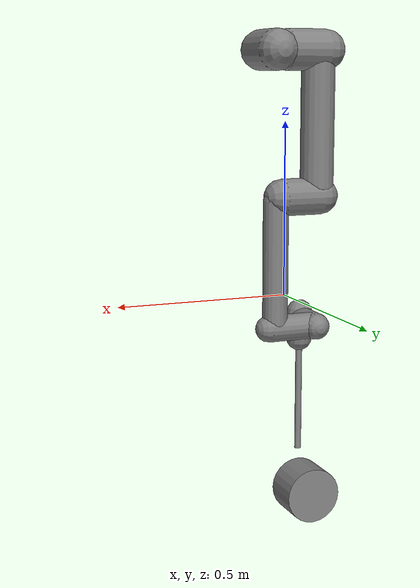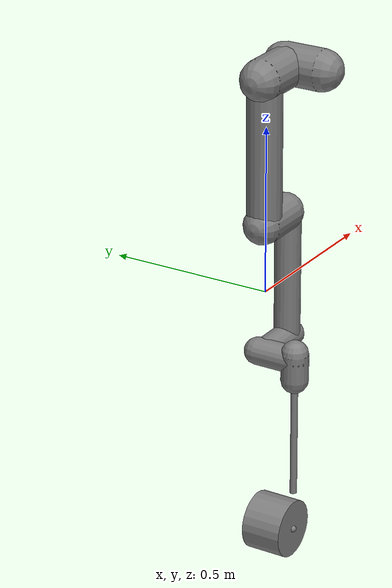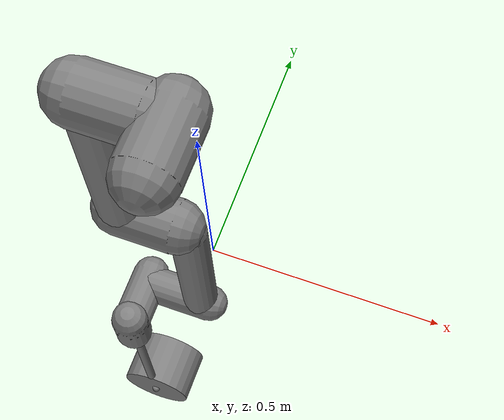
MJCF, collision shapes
<mujoco model="ur5e">
  <compiler angle="radian" meshdir="meshes" autolimits="true"/>
  <option timestep="0.001"/>

  <default>
    <default class="ur5e">
      <material specular="0.5" shininess="0.25"/>
      <default class="visual">
        <geom type="mesh" contype="0" conaffinity="0" group="2"/>
      </default>
      <default class="collision">
        <geom type="capsule" group="3"/>
        <default class="eef_collision">
          <geom type="cylinder"/>
        </default>
      </default>
      <default class="racket_collision">
        <!-- 1000 and 0111 -->
        <geom contype="8" conaffinity="7"  group="3"/>
      </default>
      <default class="Shoulder">
        <motor ctrlrange="-1.485 1.485" user="3030 2000 1.87e-8"/>
      </default>
      <default class="Wrist">
        <motor ctrlrange="-0.277 0.277" user="3030 2000 2.07e-5"/>
      </default>
    </default>
  </default>

  <asset>
    <material class="ur5e" name="black" rgba="0.033 0.033 0.033 1"/>
    <material class="ur5e" name="jointgray" rgba="0.278 0.278 0.278 1"/>
    <material class="ur5e" name="linkgray" rgba="0.82 0.82 0.82 1"/>
    <material class="ur5e" name="urblue" rgba="0.49 0.678 0.8 1"/>

    <mesh file="base_0.obj"/>
    <mesh file="base_1.obj"/>
    <mesh file="shoulder_0.obj"/>
    <mesh file="shoulder_1.obj"/>
    <mesh file="shoulder_2.obj"/>
    <mesh file="upperarm_0.obj"/>
    <mesh file="upperarm_1.obj"/>
    <mesh file="upperarm_2.obj"/>
    <mesh file="upperarm_3.obj"/>
    <mesh file="forearm_0.obj"/>
    <mesh file="forearm_1.obj"/>
    <mesh file="forearm_2.obj"/>
    <mesh file="forearm_3.obj"/>
    <mesh file="wrist1_0.obj"/>
    <mesh file="wrist1_1.obj"/>
    <mesh file="wrist1_2.obj"/>
    <mesh file="wrist2_0.obj"/>
    <mesh file="wrist2_1.obj"/>
    <mesh file="wrist2_2.obj"/>
    <mesh file="wrist3.obj"/>
    <mesh file="racket.STL"/>
  </asset>

  <worldbody>
    <light name="spotlight" mode="track" pos="0 0 3" dir="0 0 -1"  castshadow="false"/>
    <light name="front" mode="track" pos="3 0.2 1.5" dir="-1 0 0" castshadow="false"/>
    <body name="base" pos="0 -0.24 0.7" quat="1 -1 0 0" childclass="ur5e">
      <inertial mass="4.0" pos="0 0 0" diaginertia="0.00443333156 0.00443333156 0.0072"/>
      <geom mesh="base_0" material="black" class="visual"/>
      <geom mesh="base_1" material="jointgray" class="visual"/>
      <body name="shoulder_link" pos="0 0 0.163" quat="1 0 0 1">
        <inertial mass="3.7" pos="0 0 0" diaginertia="0.0102675 0.0102675 0.00666"/>
        <joint name="ShoulderRoll" axis="0 0 1" range="-3.1415 3.1415"  limited="true"/>
        <geom mesh="shoulder_0" material="urblue" class="visual"/>
        <geom mesh="shoulder_1" material="black" class="visual"/>
        <geom mesh="shoulder_2" material="jointgray" class="visual"/>
        <geom class="collision" size="0.06 0.06" pos="0 0 -0.04"/>
        <body name="upper_arm_link" pos="0 0.138 0" quat="1 0 1 0">
          <inertial mass="8.393" pos="0 0 0.2125" diaginertia="0.133886 0.133886 0.0151074"/>
          <joint name="ShoulderPitch" axis="0 -1 0" range="-3.1415 4.8"  limited="true"/>
          <geom mesh="upperarm_0" material="linkgray" class="visual"/>
          <geom mesh="upperarm_1" material="black" class="visual"/>
          <geom mesh="upperarm_2" material="jointgray" class="visual"/>
          <geom mesh="upperarm_3" material="urblue" class="visual"/>
          <geom class="collision" pos="0 -0.04 0" quat="1 1 0 0" size="0.06 0.06"/>
          <geom class="collision" size="0.05 0.2" pos="0 0 0.2"/>
          <body name="forearm_link" pos="0 -0.131 0.425">
            <inertial mass="2.275" pos="0 0 0.196" diaginertia="0.0311796 0.0311796 0.004095"/>
            <joint name="Elbow" axis="0 -1 0" range="-3.1415 3.14"  limited="true"/>
            <geom mesh="forearm_0" material="urblue" class="visual"/>
            <geom mesh="forearm_1" material="linkgray" class="visual"/>
            <geom mesh="forearm_2" material="black" class="visual"/>
            <geom mesh="forearm_3" material="jointgray" class="visual"/>
            <geom class="collision" pos="0 0.08 0" quat="1 1 0 0" size="0.055 0.06"/>
            <geom class="collision" size="0.038 0.19" pos="0 0 0.2"/>
            <body name="wrist_1_link" pos="0 0 0.392" quat="1 0 1 0">
              <inertial mass="1.219" pos="0 0.127 0" diaginertia="0.0025599 0.0025599 0.0021942"/>
              <joint name="wrist_1" axis="0 -1 0" range="-3.1415 3.14"  limited="true"/>
              <geom mesh="wrist1_0" material="black" class="visual"/>
              <geom mesh="wrist1_1" material="urblue" class="visual"/>
              <geom mesh="wrist1_2" material="jointgray" class="visual"/>
              <geom class="collision" pos="0 0.05 0" quat="1 1 0 0" size="0.04 0.07"/>
              <body name="wrist_2_link" pos="0 0.127 0" quat="1 0 0 1">
                <inertial mass="1.219" pos="0 0 0.1" diaginertia="0.0025599 0.0025599 0.0021942"/>
                <joint name="wrist_2" axis="0 0 1" range="-3.1415 3.14"  limited="true"/>
                <geom mesh="wrist2_0" material="black" class="visual"/>
                <geom mesh="wrist2_1" material="urblue" class="visual"/>
                <geom mesh="wrist2_2" material="jointgray" class="visual"/>
                <geom class="collision" size="0.04 0.06" pos="0 0 0.04"/>
                <geom class="collision" pos="0 0.02 0.1" quat="1 1 0 0" size="0.04 0.04"/>
                <body name="wrist_3_link" pos="0 0 0.1" quat="1 1 0 0">

                  <joint name="wrist_3" axis="0 -1 0" range="-3.1415 3.14"  limited="true"/>
                  <geom material="linkgray" mesh="racket" class="visual" pos = "0 0 0"/>
                  <geom class="racket_collision" name="racket1" type="cylinder" size="0.01 0.2" pos="0.0 0.0 -0.22"/>
                  <site name="HandIMU" size="0.01" pos="0 0 0.0" group="0"/>
                  <site name="EndIMU" size="0.01" pos="0 0 -0.54" group="0"/>
                  <geom class="racket_collision" name="racket2" type="cylinder" size="0.085 0.06" pos="0 -0.06 -0.54" euler="1.57 0 0"  friction="0.8 0.8 0.8"/>
                  <inertial pos="0.0 0.0 -0.35" mass="0.09"  diaginertia="0.004425  0.004448  0.000227"/>
                </body>
              </body>
            </body>
          </body>
        </body>
      </body>
    </body>
  </worldbody>

  <actuator>
    <motor class="Shoulder" name="ShoulderRoll" joint="ShoulderRoll" gear="101"/>
    <motor class="Shoulder" name="ShoulderPitch" joint="ShoulderPitch" gear="101"/>
    <motor class="Shoulder" name="Elbow" joint="Elbow" gear="101"/>
    <motor class="Wrist" name="wrist_1" joint="wrist_1" gear="101"/>
    <motor class="Wrist" name="wrist_2" joint="wrist_2" gear="101"/>
    <motor class="Wrist" name="wrist_3" joint="wrist_3" gear="101"/>

  </actuator>

  <sensor>
    <accelerometer name="HnadAcc" site="HandIMU" noise="1e-2"/>
    <gyro name="HandGyro" site="HandIMU" noise="5e-4"/>
    <velocimeter name="HandVel" site="HandIMU" noise="5e-4"/>

    <accelerometer name="EndAcc" site="EndIMU" noise="1e-2"/>
    <gyro name="EndGyro" site="EndIMU" noise="5e-4"/>
    <velocimeter name="EndVel" site="EndIMU" noise="5e-4"/>
    <touch name="EndTouch" site="EndIMU"/>
  </sensor>

</mujoco>
